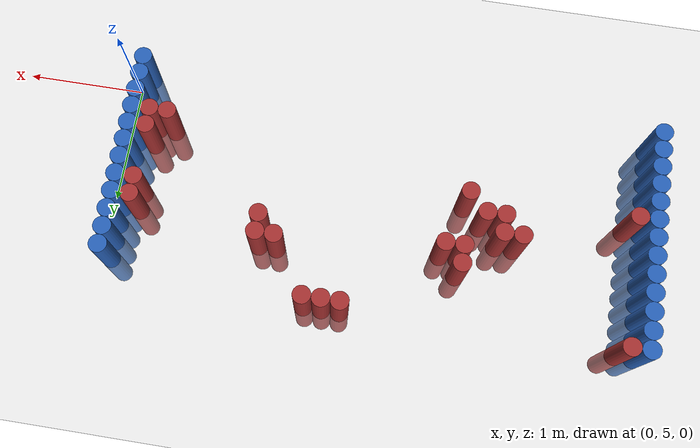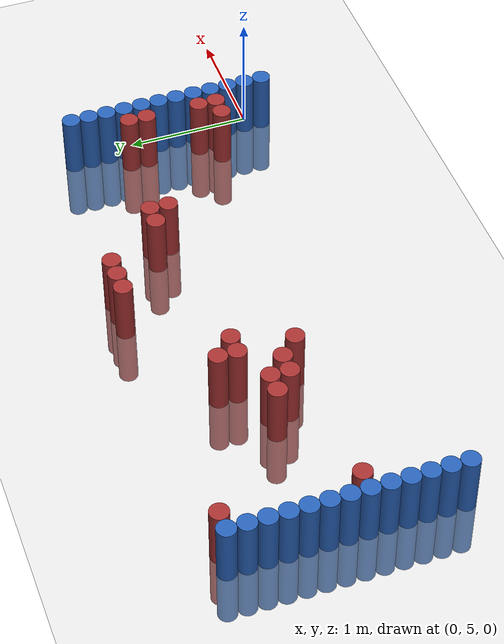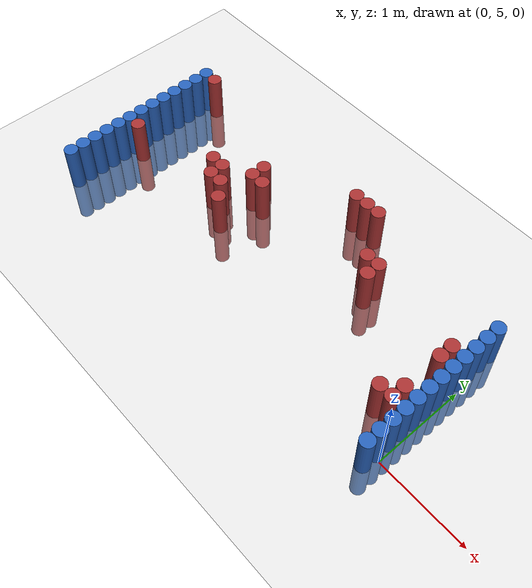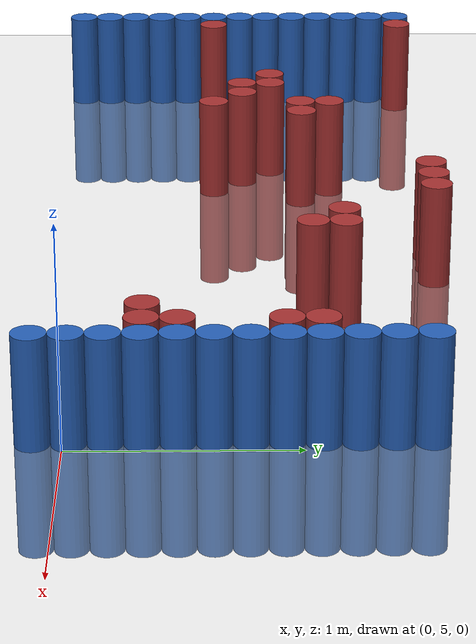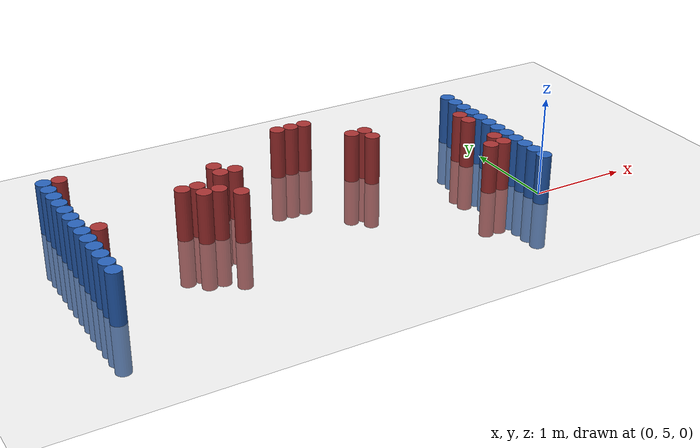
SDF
<sdf version="1.6">
 <world name="default">
  <model name="ground_plane">
   <static>1</static>
   <link name="link">
    <collision name="collision">
     <geometry><plane><normal>0 0 1</normal><size>100 100</size></plane></geometry>
     <surface><friction><ode><mu>100</mu><mu2>50</mu2></ode></friction></surface>
    </collision>
    <visual name="visual">
     <cast_shadows>0</cast_shadows>
     <geometry><plane><normal>0 0 1</normal><size>100 100</size></plane></geometry>
     <material>
      <script><uri>file://media/materials/scripts/gazebo.material</uri><name>Gazebo/Grey</name></script>
     </material>
    </visual>
   </link>
  </model>
  <model name="unit_cylinder_92">
   <static>1</static>
   <pose>-0.075000 4.875000 0.000000 0.000000 0.000000 0.000000</pose>
   <link name="link">
    <inertial>
     <mass>1</mass>
     <inertia><ixx>0.145833</ixx><ixy>0</ixy><ixz>0</ixz><iyy>0.145833</iyy><iyz>0</iyz><izz>0.125</izz></inertia>
    </inertial>
    <collision name="collision">
     <geometry><cylinder><radius>0.075000</radius><length>1</length></cylinder></geometry>
    </collision>
    <visual name="visual">
     <geometry><cylinder><radius>0.075000</radius><length>1</length></cylinder></geometry>
     <material>
      <ambient>0.152000 0.379000 0.720000 1</ambient>
      <diffuse>0.152000 0.379000 0.720000 1</diffuse>
     </material>
     <material>
      <script><name>Gazebo/Grey</name><uri>file://media/materials/scripts/gazebo.material</uri></script>
     </material>
    </visual>
   </link>
  </model>
  <model name="unit_cylinder_93">
   <static>1</static>
   <pose>-4.425000 4.875000 0.000000 0.000000 0.000000 0.000000</pose>
   <link name="link">
    <inertial>
     <mass>1</mass>
     <inertia><ixx>0.145833</ixx><ixy>0</ixy><ixz>0</ixz><iyy>0.145833</iyy><iyz>0</iyz><izz>0.125</izz></inertia>
    </inertial>
    <collision name="collision">
     <geometry><cylinder><radius>0.075000</radius><length>1</length></cylinder></geometry>
    </collision>
    <visual name="visual">
     <geometry><cylinder><radius>0.075000</radius><length>1</length></cylinder></geometry>
     <material>
      <ambient>0.152000 0.379000 0.720000 1</ambient>
      <diffuse>0.152000 0.379000 0.720000 1</diffuse>
     </material>
     <material>
      <script><name>Gazebo/Grey</name><uri>file://media/materials/scripts/gazebo.material</uri></script>
     </material>
    </visual>
   </link>
  </model>
  <model name="unit_cylinder_94">
   <static>1</static>
   <pose>-0.075000 5.025000 0.000000 0.000000 0.000000 0.000000</pose>
   <link name="link">
    <inertial>
     <mass>1</mass>
     <inertia><ixx>0.145833</ixx><ixy>0</ixy><ixz>0</ixz><iyy>0.145833</iyy><iyz>0</iyz><izz>0.125</izz></inertia>
    </inertial>
    <collision name="collision">
     <geometry><cylinder><radius>0.075000</radius><length>1</length></cylinder></geometry>
    </collision>
    <visual name="visual">
     <geometry><cylinder><radius>0.075000</radius><length>1</length></cylinder></geometry>
     <material>
      <ambient>0.152000 0.379000 0.720000 1</ambient>
      <diffuse>0.152000 0.379000 0.720000 1</diffuse>
     </material>
     <material>
      <script><name>Gazebo/Grey</name><uri>file://media/materials/scripts/gazebo.material</uri></script>
     </material>
    </visual>
   </link>
  </model>
  <model name="unit_cylinder_95">
   <static>1</static>
   <pose>-4.425000 5.025000 0.000000 0.000000 0.000000 0.000000</pose>
   <link name="link">
    <inertial>
     <mass>1</mass>
     <inertia><ixx>0.145833</ixx><ixy>0</ixy><ixz>0</ixz><iyy>0.145833</iyy><iyz>0</iyz><izz>0.125</izz></inertia>
    </inertial>
    <collision name="collision">
     <geometry><cylinder><radius>0.075000</radius><length>1</length></cylinder></geometry>
    </collision>
    <visual name="visual">
     <geometry><cylinder><radius>0.075000</radius><length>1</length></cylinder></geometry>
     <material>
      <ambient>0.152000 0.379000 0.720000 1</ambient>
      <diffuse>0.152000 0.379000 0.720000 1</diffuse>
     </material>
     <material>
      <script><name>Gazebo/Grey</name><uri>file://media/materials/scripts/gazebo.material</uri></script>
     </material>
    </visual>
   </link>
  </model>
  <model name="unit_cylinder_96">
   <static>1</static>
   <pose>-4.425000 5.175000 0.000000 0.000000 0.000000 0.000000</pose>
   <link name="link">
    <inertial>
     <mass>1</mass>
     <inertia><ixx>0.145833</ixx><ixy>0</ixy><ixz>0</ixz><iyy>0.145833</iyy><iyz>0</iyz><izz>0.125</izz></inertia>
    </inertial>
    <collision name="collision">
     <geometry><cylinder><radius>0.075000</radius><length>1</length></cylinder></geometry>
    </collision>
    <visual name="visual">
     <geometry><cylinder><radius>0.075000</radius><length>1</length></cylinder></geometry>
     <material>
      <ambient>0.152000 0.379000 0.720000 1</ambient>
      <diffuse>0.152000 0.379000 0.720000 1</diffuse>
     </material>
     <material>
      <script><name>Gazebo/Grey</name><uri>file://media/materials/scripts/gazebo.material</uri></script>
     </material>
    </visual>
   </link>
  </model>
  <model name="unit_cylinder_97">
   <static>1</static>
   <pose>-4.425000 5.325000 0.000000 0.000000 0.000000 0.000000</pose>
   <link name="link">
    <inertial>
     <mass>1</mass>
     <inertia><ixx>0.145833</ixx><ixy>0</ixy><ixz>0</ixz><iyy>0.145833</iyy><iyz>0</iyz><izz>0.125</izz></inertia>
    </inertial>
    <collision name="collision">
     <geometry><cylinder><radius>0.075000</radius><length>1</length></cylinder></geometry>
    </collision>
    <visual name="visual">
     <geometry><cylinder><radius>0.075000</radius><length>1</length></cylinder></geometry>
     <material>
      <ambient>0.152000 0.379000 0.720000 1</ambient>
      <diffuse>0.152000 0.379000 0.720000 1</diffuse>
     </material>
     <material>
      <script><name>Gazebo/Grey</name><uri>file://media/materials/scripts/gazebo.material</uri></script>
     </material>
    </visual>
   </link>
  </model>
  <model name="unit_cylinder_98">
   <static>1</static>
   <pose>-4.425000 5.475000 0.000000 0.000000 0.000000 0.000000</pose>
   <link name="link">
    <inertial>
     <mass>1</mass>
     <inertia><ixx>0.145833</ixx><ixy>0</ixy><ixz>0</ixz><iyy>0.145833</iyy><iyz>0</iyz><izz>0.125</izz></inertia>
    </inertial>
    <collision name="collision">
     <geometry><cylinder><radius>0.075000</radius><length>1</length></cylinder></geometry>
    </collision>
    <visual name="visual">
     <geometry><cylinder><radius>0.075000</radius><length>1</length></cylinder></geometry>
     <material>
      <ambient>0.152000 0.379000 0.720000 1</ambient>
      <diffuse>0.152000 0.379000 0.720000 1</diffuse>
     </material>
     <material>
      <script><name>Gazebo/Grey</name><uri>file://media/materials/scripts/gazebo.material</uri></script>
     </material>
    </visual>
   </link>
  </model>
  <model name="unit_cylinder_99">
   <static>1</static>
   <pose>-4.425000 5.625000 0.000000 0.000000 0.000000 0.000000</pose>
   <link name="link">
    <inertial>
     <mass>1</mass>
     <inertia><ixx>0.145833</ixx><ixy>0</ixy><ixz>0</ixz><iyy>0.145833</iyy><iyz>0</iyz><izz>0.125</izz></inertia>
    </inertial>
    <collision name="collision">
     <geometry><cylinder><radius>0.075000</radius><length>1</length></cylinder></geometry>
    </collision>
    <visual name="visual">
     <geometry><cylinder><radius>0.075000</radius><length>1</length></cylinder></geometry>
     <material>
      <ambient>0.152000 0.379000 0.720000 1</ambient>
      <diffuse>0.152000 0.379000 0.720000 1</diffuse>
     </material>
     <material>
      <script><name>Gazebo/Grey</name><uri>file://media/materials/scripts/gazebo.material</uri></script>
     </material>
    </visual>
   </link>
  </model>
  <model name="unit_cylinder_100">
   <static>1</static>
   <pose>-4.425000 5.775000 0.000000 0.000000 0.000000 0.000000</pose>
   <link name="link">
    <inertial>
     <mass>1</mass>
     <inertia><ixx>0.145833</ixx><ixy>0</ixy><ixz>0</ixz><iyy>0.145833</iyy><iyz>0</iyz><izz>0.125</izz></inertia>
    </inertial>
    <collision name="collision">
     <geometry><cylinder><radius>0.075000</radius><length>1</length></cylinder></geometry>
    </collision>
    <visual name="visual">
     <geometry><cylinder><radius>0.075000</radius><length>1</length></cylinder></geometry>
     <material>
      <ambient>0.152000 0.379000 0.720000 1</ambient>
      <diffuse>0.152000 0.379000 0.720000 1</diffuse>
     </material>
     <material>
      <script><name>Gazebo/Grey</name><uri>file://media/materials/scripts/gazebo.material</uri></script>
     </material>
    </visual>
   </link>
  </model>
  <model name="unit_cylinder_101">
   <static>1</static>
   <pose>-4.425000 5.925000 0.000000 0.000000 0.000000 0.000000</pose>
   <link name="link">
    <inertial>
     <mass>1</mass>
     <inertia><ixx>0.145833</ixx><ixy>0</ixy><ixz>0</ixz><iyy>0.145833</iyy><iyz>0</iyz><izz>0.125</izz></inertia>
    </inertial>
    <collision name="collision">
     <geometry><cylinder><radius>0.075000</radius><length>1</length></cylinder></geometry>
    </collision>
    <visual name="visual">
     <geometry><cylinder><radius>0.075000</radius><length>1</length></cylinder></geometry>
     <material>
      <ambient>0.152000 0.379000 0.720000 1</ambient>
      <diffuse>0.152000 0.379000 0.720000 1</diffuse>
     </material>
     <material>
      <script><name>Gazebo/Grey</name><uri>file://media/materials/scripts/gazebo.material</uri></script>
     </material>
    </visual>
   </link>
  </model>
  <model name="unit_cylinder_102">
   <static>1</static>
   <pose>-4.425000 6.075000 0.000000 0.000000 0.000000 0.000000</pose>
   <link name="link">
    <inertial>
     <mass>1</mass>
     <inertia><ixx>0.145833</ixx><ixy>0</ixy><ixz>0</ixz><iyy>0.145833</iyy><iyz>0</iyz><izz>0.125</izz></inertia>
    </inertial>
    <collision name="collision">
     <geometry><cylinder><radius>0.075000</radius><length>1</length></cylinder></geometry>
    </collision>
    <visual name="visual">
     <geometry><cylinder><radius>0.075000</radius><length>1</length></cylinder></geometry>
     <material>
      <ambient>0.152000 0.379000 0.720000 1</ambient>
      <diffuse>0.152000 0.379000 0.720000 1</diffuse>
     </material>
     <material>
      <script><name>Gazebo/Grey</name><uri>file://media/materials/scripts/gazebo.material</uri></script>
     </material>
    </visual>
   </link>
  </model>
  <model name="unit_cylinder_103">
   <static>1</static>
   <pose>-4.425000 6.225000 0.000000 0.000000 0.000000 0.000000</pose>
   <link name="link">
    <inertial>
     <mass>1</mass>
     <inertia><ixx>0.145833</ixx><ixy>0</ixy><ixz>0</ixz><iyy>0.145833</iyy><iyz>0</iyz><izz>0.125</izz></inertia>
    </inertial>
    <collision name="collision">
     <geometry><cylinder><radius>0.075000</radius><length>1</length></cylinder></geometry>
    </collision>
    <visual name="visual">
     <geometry><cylinder><radius>0.075000</radius><length>1</length></cylinder></geometry>
     <material>
      <ambient>0.152000 0.379000 0.720000 1</ambient>
      <diffuse>0.152000 0.379000 0.720000 1</diffuse>
     </material>
     <material>
      <script><name>Gazebo/Grey</name><uri>file://media/materials/scripts/gazebo.material</uri></script>
     </material>
    </visual>
   </link>
  </model>
  <model name="unit_cylinder_104">
   <static>1</static>
   <pose>-4.425000 6.375000 0.000000 0.000000 0.000000 0.000000</pose>
   <link name="link">
    <inertial>
     <mass>1</mass>
     <inertia><ixx>0.145833</ixx><ixy>0</ixy><ixz>0</ixz><iyy>0.145833</iyy><iyz>0</iyz><izz>0.125</izz></inertia>
    </inertial>
    <collision name="collision">
     <geometry><cylinder><radius>0.075000</radius><length>1</length></cylinder></geometry>
    </collision>
    <visual name="visual">
     <geometry><cylinder><radius>0.075000</radius><length>1</length></cylinder></geometry>
     <material>
      <ambient>0.152000 0.379000 0.720000 1</ambient>
      <diffuse>0.152000 0.379000 0.720000 1</diffuse>
     </material>
     <material>
      <script><name>Gazebo/Grey</name><uri>file://media/materials/scripts/gazebo.material</uri></script>
     </material>
    </visual>
   </link>
  </model>
  <model name="unit_cylinder_105">
   <static>1</static>
   <pose>-4.425000 6.525000 0.000000 0.000000 0.000000 0.000000</pose>
   <link name="link">
    <inertial>
     <mass>1</mass>
     <inertia><ixx>0.145833</ixx><ixy>0</ixy><ixz>0</ixz><iyy>0.145833</iyy><iyz>0</iyz><izz>0.125</izz></inertia>
    </inertial>
    <collision name="collision">
     <geometry><cylinder><radius>0.075000</radius><length>1</length></cylinder></geometry>
    </collision>
    <visual name="visual">
     <geometry><cylinder><radius>0.075000</radius><length>1</length></cylinder></geometry>
     <material>
      <ambient>0.152000 0.379000 0.720000 1</ambient>
      <diffuse>0.152000 0.379000 0.720000 1</diffuse>
     </material>
     <material>
      <script><name>Gazebo/Grey</name><uri>file://media/materials/scripts/gazebo.material</uri></script>
     </material>
    </visual>
   </link>
  </model>
  <model name="unit_cylinder_106">
   <static>1</static>
   <pose>-4.425000 6.675000 0.000000 0.000000 0.000000 0.000000</pose>
   <link name="link">
    <inertial>
     <mass>1</mass>
     <inertia><ixx>0.145833</ixx><ixy>0</ixy><ixz>0</ixz><iyy>0.145833</iyy><iyz>0</iyz><izz>0.125</izz></inertia>
    </inertial>
    <collision name="collision">
     <geometry><cylinder><radius>0.075000</radius><length>1</length></cylinder></geometry>
    </collision>
    <visual name="visual">
     <geometry><cylinder><radius>0.075000</radius><length>1</length></cylinder></geometry>
     <material>
      <ambient>0.152000 0.379000 0.720000 1</ambient>
      <diffuse>0.152000 0.379000 0.720000 1</diffuse>
     </material>
     <material>
      <script><name>Gazebo/Grey</name><uri>file://media/materials/scripts/gazebo.material</uri></script>
     </material>
    </visual>
   </link>
  </model>
  <model name="unit_cylinder_126">
   <static>1</static>
   <pose>-4.275000 5.625000 0.000000 0.000000 0.000000 0.000000</pose>
   <link name="link">
    <inertial>
     <mass>1</mass>
     <inertia><ixx>0.145833</ixx><ixy>0</ixy><ixz>0</ixz><iyy>0.145833</iyy><iyz>0</iyz><izz>0.125</izz></inertia>
    </inertial>
    <collision name="collision">
     <geometry><cylinder><radius>0.075000</radius><length>1</length></cylinder></geometry>
    </collision>
    <visual name="visual">
     <geometry><cylinder><radius>0.075000</radius><length>1</length></cylinder></geometry>
     <material>
      <ambient>0.648000 0.192000 0.192000 1</ambient>
      <diffuse>0.648000 0.192000 0.192000 1</diffuse>
     </material>
     <material>
      <script><name>Gazebo/Grey</name><uri>file://media/materials/scripts/gazebo.material</uri></script>
     </material>
    </visual>
   </link>
  </model>
  <model name="unit_cylinder_127">
   <static>1</static>
   <pose>-4.275000 6.675000 0.000000 0.000000 0.000000 0.000000</pose>
   <link name="link">
    <inertial>
     <mass>1</mass>
     <inertia><ixx>0.145833</ixx><ixy>0</ixy><ixz>0</ixz><iyy>0.145833</iyy><iyz>0</iyz><izz>0.125</izz></inertia>
    </inertial>
    <collision name="collision">
     <geometry><cylinder><radius>0.075000</radius><length>1</length></cylinder></geometry>
    </collision>
    <visual name="visual">
     <geometry><cylinder><radius>0.075000</radius><length>1</length></cylinder></geometry>
     <material>
      <ambient>0.648000 0.192000 0.192000 1</ambient>
      <diffuse>0.648000 0.192000 0.192000 1</diffuse>
     </material>
     <material>
      <script><name>Gazebo/Grey</name><uri>file://media/materials/scripts/gazebo.material</uri></script>
     </material>
    </visual>
   </link>
  </model>
  <model name="unit_cylinder_156">
   <static>1</static>
   <pose>-3.375000 5.925000 0.000000 0.000000 0.000000 0.000000</pose>
   <link name="link">
    <inertial>
     <mass>1</mass>
     <inertia><ixx>0.145833</ixx><ixy>0</ixy><ixz>0</ixz><iyy>0.145833</iyy><iyz>0</iyz><izz>0.125</izz></inertia>
    </inertial>
    <collision name="collision">
     <geometry><cylinder><radius>0.075000</radius><length>1</length></cylinder></geometry>
    </collision>
    <visual name="visual">
     <geometry><cylinder><radius>0.075000</radius><length>1</length></cylinder></geometry>
     <material>
      <ambient>0.648000 0.192000 0.192000 1</ambient>
      <diffuse>0.648000 0.192000 0.192000 1</diffuse>
     </material>
     <material>
      <script><name>Gazebo/Grey</name><uri>file://media/materials/scripts/gazebo.material</uri></script>
     </material>
    </visual>
   </link>
  </model>
  <model name="unit_cylinder_162">
   <static>1</static>
   <pose>-3.225000 5.775000 0.000000 0.000000 0.000000 0.000000</pose>
   <link name="link">
    <inertial>
     <mass>1</mass>
     <inertia><ixx>0.145833</ixx><ixy>0</ixy><ixz>0</ixz><iyy>0.145833</iyy><iyz>0</iyz><izz>0.125</izz></inertia>
    </inertial>
    <collision name="collision">
     <geometry><cylinder><radius>0.075000</radius><length>1</length></cylinder></geometry>
    </collision>
    <visual name="visual">
     <geometry><cylinder><radius>0.075000</radius><length>1</length></cylinder></geometry>
     <material>
      <ambient>0.648000 0.192000 0.192000 1</ambient>
      <diffuse>0.648000 0.192000 0.192000 1</diffuse>
     </material>
     <material>
      <script><name>Gazebo/Grey</name><uri>file://media/materials/scripts/gazebo.material</uri></script>
     </material>
    </visual>
   </link>
  </model>
  <model name="unit_cylinder_163">
   <static>1</static>
   <pose>-3.225000 5.925000 0.000000 0.000000 0.000000 0.000000</pose>
   <link name="link">
    <inertial>
     <mass>1</mass>
     <inertia><ixx>0.145833</ixx><ixy>0</ixy><ixz>0</ixz><iyy>0.145833</iyy><iyz>0</iyz><izz>0.125</izz></inertia>
    </inertial>
    <collision name="collision">
     <geometry><cylinder><radius>0.075000</radius><length>1</length></cylinder></geometry>
    </collision>
    <visual name="visual">
     <geometry><cylinder><radius>0.075000</radius><length>1</length></cylinder></geometry>
     <material>
      <ambient>0.648000 0.192000 0.192000 1</ambient>
      <diffuse>0.648000 0.192000 0.192000 1</diffuse>
     </material>
     <material>
      <script><name>Gazebo/Grey</name><uri>file://media/materials/scripts/gazebo.material</uri></script>
     </material>
    </visual>
   </link>
  </model>
  <model name="unit_cylinder_167">
   <static>1</static>
   <pose>-3.075000 5.775000 0.000000 0.000000 0.000000 0.000000</pose>
   <link name="link">
    <inertial>
     <mass>1</mass>
     <inertia><ixx>0.145833</ixx><ixy>0</ixy><ixz>0</ixz><iyy>0.145833</iyy><iyz>0</iyz><izz>0.125</izz></inertia>
    </inertial>
    <collision name="collision">
     <geometry><cylinder><radius>0.075000</radius><length>1</length></cylinder></geometry>
    </collision>
    <visual name="visual">
     <geometry><cylinder><radius>0.075000</radius><length>1</length></cylinder></geometry>
     <material>
      <ambient>0.648000 0.192000 0.192000 1</ambient>
      <diffuse>0.648000 0.192000 0.192000 1</diffuse>
     </material>
     <material>
      <script><name>Gazebo/Grey</name><uri>file://media/materials/scripts/gazebo.material</uri></script>
     </material>
    </visual>
   </link>
  </model>
  <model name="unit_cylinder_172">
   <static>1</static>
   <pose>-2.925000 5.625000 0.000000 0.000000 0.000000 0.000000</pose>
   <link name="link">
    <inertial>
     <mass>1</mass>
     <inertia><ixx>0.145833</ixx><ixy>0</ixy><ixz>0</ixz><iyy>0.145833</iyy><iyz>0</iyz><izz>0.125</izz></inertia>
    </inertial>
    <collision name="collision">
     <geometry><cylinder><radius>0.075000</radius><length>1</length></cylinder></geometry>
    </collision>
    <visual name="visual">
     <geometry><cylinder><radius>0.075000</radius><length>1</length></cylinder></geometry>
     <material>
      <ambient>0.648000 0.192000 0.192000 1</ambient>
      <diffuse>0.648000 0.192000 0.192000 1</diffuse>
     </material>
     <material>
      <script><name>Gazebo/Grey</name><uri>file://media/materials/scripts/gazebo.material</uri></script>
     </material>
    </visual>
   </link>
  </model>
  <model name="unit_cylinder_173">
   <static>1</static>
   <pose>-2.925000 6.075000 0.000000 0.000000 0.000000 0.000000</pose>
   <link name="link">
    <inertial>
     <mass>1</mass>
     <inertia><ixx>0.145833</ixx><ixy>0</ixy><ixz>0</ixz><iyy>0.145833</iyy><iyz>0</iyz><izz>0.125</izz></inertia>
    </inertial>
    <collision name="collision">
     <geometry><cylinder><radius>0.075000</radius><length>1</length></cylinder></geometry>
    </collision>
    <visual name="visual">
     <geometry><cylinder><radius>0.075000</radius><length>1</length></cylinder></geometry>
     <material>
      <ambient>0.648000 0.192000 0.192000 1</ambient>
      <diffuse>0.648000 0.192000 0.192000 1</diffuse>
     </material>
     <material>
      <script><name>Gazebo/Grey</name><uri>file://media/materials/scripts/gazebo.material</uri></script>
     </material>
    </visual>
   </link>
  </model>
  <model name="unit_cylinder_174">
   <static>1</static>
   <pose>-2.925000 6.225000 0.000000 0.000000 0.000000 0.000000</pose>
   <link name="link">
    <inertial>
     <mass>1</mass>
     <inertia><ixx>0.145833</ixx><ixy>0</ixy><ixz>0</ixz><iyy>0.145833</iyy><iyz>0</iyz><izz>0.125</izz></inertia>
    </inertial>
    <collision name="collision">
     <geometry><cylinder><radius>0.075000</radius><length>1</length></cylinder></geometry>
    </collision>
    <visual name="visual">
     <geometry><cylinder><radius>0.075000</radius><length>1</length></cylinder></geometry>
     <material>
      <ambient>0.648000 0.192000 0.192000 1</ambient>
      <diffuse>0.648000 0.192000 0.192000 1</diffuse>
     </material>
     <material>
      <script><name>Gazebo/Grey</name><uri>file://media/materials/scripts/gazebo.material</uri></script>
     </material>
    </visual>
   </link>
  </model>
  <model name="unit_cylinder_176">
   <static>1</static>
   <pose>-2.775000 6.075000 0.000000 0.000000 0.000000 0.000000</pose>
   <link name="link">
    <inertial>
     <mass>1</mass>
     <inertia><ixx>0.145833</ixx><ixy>0</ixy><ixz>0</ixz><iyy>0.145833</iyy><iyz>0</iyz><izz>0.125</izz></inertia>
    </inertial>
    <collision name="collision">
     <geometry><cylinder><radius>0.075000</radius><length>1</length></cylinder></geometry>
    </collision>
    <visual name="visual">
     <geometry><cylinder><radius>0.075000</radius><length>1</length></cylinder></geometry>
     <material>
      <ambient>0.648000 0.192000 0.192000 1</ambient>
      <diffuse>0.648000 0.192000 0.192000 1</diffuse>
     </material>
     <material>
      <script><name>Gazebo/Grey</name><uri>file://media/materials/scripts/gazebo.material</uri></script>
     </material>
    </visual>
   </link>
  </model>
  <model name="unit_cylinder_178">
   <static>1</static>
   <pose>-2.025000 6.675000 0.000000 0.000000 0.000000 0.000000</pose>
   <link name="link">
    <inertial>
     <mass>1</mass>
     <inertia><ixx>0.145833</ixx><ixy>0</ixy><ixz>0</ixz><iyy>0.145833</iyy><iyz>0</iyz><izz>0.125</izz></inertia>
    </inertial>
    <collision name="collision">
     <geometry><cylinder><radius>0.075000</radius><length>1</length></cylinder></geometry>
    </collision>
    <visual name="visual">
     <geometry><cylinder><radius>0.075000</radius><length>1</length></cylinder></geometry>
     <material>
      <ambient>0.648000 0.192000 0.192000 1</ambient>
      <diffuse>0.648000 0.192000 0.192000 1</diffuse>
     </material>
     <material>
      <script><name>Gazebo/Grey</name><uri>file://media/materials/scripts/gazebo.material</uri></script>
     </material>
    </visual>
   </link>
  </model>
  <model name="unit_cylinder_179">
   <static>1</static>
   <pose>-1.875000 6.675000 0.000000 0.000000 0.000000 0.000000</pose>
   <link name="link">
    <inertial>
     <mass>1</mass>
     <inertia><ixx>0.145833</ixx><ixy>0</ixy><ixz>0</ixz><iyy>0.145833</iyy><iyz>0</iyz><izz>0.125</izz></inertia>
    </inertial>
    <collision name="collision">
     <geometry><cylinder><radius>0.075000</radius><length>1</length></cylinder></geometry>
    </collision>
    <visual name="visual">
     <geometry><cylinder><radius>0.075000</radius><length>1</length></cylinder></geometry>
     <material>
      <ambient>0.648000 0.192000 0.192000 1</ambient>
      <diffuse>0.648000 0.192000 0.192000 1</diffuse>
     </material>
     <material>
      <script><name>Gazebo/Grey</name><uri>file://media/materials/scripts/gazebo.material</uri></script>
     </material>
    </visual>
   </link>
  </model>
  <model name="unit_cylinder_181">
   <static>1</static>
   <pose>-1.725000 6.675000 0.000000 0.000000 0.000000 0.000000</pose>
   <link name="link">
    <inertial>
     <mass>1</mass>
     <inertia><ixx>0.145833</ixx><ixy>0</ixy><ixz>0</ixz><iyy>0.145833</iyy><iyz>0</iyz><izz>0.125</izz></inertia>
    </inertial>
    <collision name="collision">
     <geometry><cylinder><radius>0.075000</radius><length>1</length></cylinder></geometry>
    </collision>
    <visual name="visual">
     <geometry><cylinder><radius>0.075000</radius><length>1</length></cylinder></geometry>
     <material>
      <ambient>0.648000 0.192000 0.192000 1</ambient>
      <diffuse>0.648000 0.192000 0.192000 1</diffuse>
     </material>
     <material>
      <script><name>Gazebo/Grey</name><uri>file://media/materials/scripts/gazebo.material</uri></script>
     </material>
    </visual>
   </link>
  </model>
  <model name="unit_cylinder_183">
   <static>1</static>
   <pose>-1.425000 6.225000 0.000000 0.000000 0.000000 0.000000</pose>
   <link name="link">
    <inertial>
     <mass>1</mass>
     <inertia><ixx>0.145833</ixx><ixy>0</ixy><ixz>0</ixz><iyy>0.145833</iyy><iyz>0</iyz><izz>0.125</izz></inertia>
    </inertial>
    <collision name="collision">
     <geometry><cylinder><radius>0.075000</radius><length>1</length></cylinder></geometry>
    </collision>
    <visual name="visual">
     <geometry><cylinder><radius>0.075000</radius><length>1</length></cylinder></geometry>
     <material>
      <ambient>0.648000 0.192000 0.192000 1</ambient>
      <diffuse>0.648000 0.192000 0.192000 1</diffuse>
     </material>
     <material>
      <script><name>Gazebo/Grey</name><uri>file://media/materials/scripts/gazebo.material</uri></script>
     </material>
    </visual>
   </link>
  </model>
  <model name="unit_cylinder_184">
   <static>1</static>
   <pose>-1.275000 6.075000 0.000000 0.000000 0.000000 0.000000</pose>
   <link name="link">
    <inertial>
     <mass>1</mass>
     <inertia><ixx>0.145833</ixx><ixy>0</ixy><ixz>0</ixz><iyy>0.145833</iyy><iyz>0</iyz><izz>0.125</izz></inertia>
    </inertial>
    <collision name="collision">
     <geometry><cylinder><radius>0.075000</radius><length>1</length></cylinder></geometry>
    </collision>
    <visual name="visual">
     <geometry><cylinder><radius>0.075000</radius><length>1</length></cylinder></geometry>
     <material>
      <ambient>0.648000 0.192000 0.192000 1</ambient>
      <diffuse>0.648000 0.192000 0.192000 1</diffuse>
     </material>
     <material>
      <script><name>Gazebo/Grey</name><uri>file://media/materials/scripts/gazebo.material</uri></script>
     </material>
    </visual>
   </link>
  </model>
  <model name="unit_cylinder_185">
   <static>1</static>
   <pose>-1.275000 6.225000 0.000000 0.000000 0.000000 0.000000</pose>
   <link name="link">
    <inertial>
     <mass>1</mass>
     <inertia><ixx>0.145833</ixx><ixy>0</ixy><ixz>0</ixz><iyy>0.145833</iyy><iyz>0</iyz><izz>0.125</izz></inertia>
    </inertial>
    <collision name="collision">
     <geometry><cylinder><radius>0.075000</radius><length>1</length></cylinder></geometry>
    </collision>
    <visual name="visual">
     <geometry><cylinder><radius>0.075000</radius><length>1</length></cylinder></geometry>
     <material>
      <ambient>0.648000 0.192000 0.192000 1</ambient>
      <diffuse>0.648000 0.192000 0.192000 1</diffuse>
     </material>
     <material>
      <script><name>Gazebo/Grey</name><uri>file://media/materials/scripts/gazebo.material</uri></script>
     </material>
    </visual>
   </link>
  </model>
  <model name="unit_cylinder_189">
   <static>1</static>
   <pose>-0.375000 5.325000 0.000000 0.000000 0.000000 0.000000</pose>
   <link name="link">
    <inertial>
     <mass>1</mass>
     <inertia><ixx>0.145833</ixx><ixy>0</ixy><ixz>0</ixz><iyy>0.145833</iyy><iyz>0</iyz><izz>0.125</izz></inertia>
    </inertial>
    <collision name="collision">
     <geometry><cylinder><radius>0.075000</radius><length>1</length></cylinder></geometry>
    </collision>
    <visual name="visual">
     <geometry><cylinder><radius>0.075000</radius><length>1</length></cylinder></geometry>
     <material>
      <ambient>0.648000 0.192000 0.192000 1</ambient>
      <diffuse>0.648000 0.192000 0.192000 1</diffuse>
     </material>
     <material>
      <script><name>Gazebo/Grey</name><uri>file://media/materials/scripts/gazebo.material</uri></script>
     </material>
    </visual>
   </link>
  </model>
  <model name="unit_cylinder_191">
   <static>1</static>
   <pose>-0.225000 5.325000 0.000000 0.000000 0.000000 0.000000</pose>
   <link name="link">
    <inertial>
     <mass>1</mass>
     <inertia><ixx>0.145833</ixx><ixy>0</ixy><ixz>0</ixz><iyy>0.145833</iyy><iyz>0</iyz><izz>0.125</izz></inertia>
    </inertial>
    <collision name="collision">
     <geometry><cylinder><radius>0.075000</radius><length>1</length></cylinder></geometry>
    </collision>
    <visual name="visual">
     <geometry><cylinder><radius>0.075000</radius><length>1</length></cylinder></geometry>
     <material>
      <ambient>0.648000 0.192000 0.192000 1</ambient>
      <diffuse>0.648000 0.192000 0.192000 1</diffuse>
     </material>
     <material>
      <script><name>Gazebo/Grey</name><uri>file://media/materials/scripts/gazebo.material</uri></script>
     </material>
    </visual>
   </link>
  </model>
  <model name="unit_cylinder_192">
   <static>1</static>
   <pose>-0.225000 5.475000 0.000000 0.000000 0.000000 0.000000</pose>
   <link name="link">
    <inertial>
     <mass>1</mass>
     <inertia><ixx>0.145833</ixx><ixy>0</ixy><ixz>0</ixz><iyy>0.145833</iyy><iyz>0</iyz><izz>0.125</izz></inertia>
    </inertial>
    <collision name="collision">
     <geometry><cylinder><radius>0.075000</radius><length>1</length></cylinder></geometry>
    </collision>
    <visual name="visual">
     <geometry><cylinder><radius>0.075000</radius><length>1</length></cylinder></geometry>
     <material>
      <ambient>0.648000 0.192000 0.192000 1</ambient>
      <diffuse>0.648000 0.192000 0.192000 1</diffuse>
     </material>
     <material>
      <script><name>Gazebo/Grey</name><uri>file://media/materials/scripts/gazebo.material</uri></script>
     </material>
    </visual>
   </link>
  </model>
  <model name="unit_cylinder_193">
   <static>1</static>
   <pose>-0.225000 5.925000 0.000000 0.000000 0.000000 0.000000</pose>
   <link name="link">
    <inertial>
     <mass>1</mass>
     <inertia><ixx>0.145833</ixx><ixy>0</ixy><ixz>0</ixz><iyy>0.145833</iyy><iyz>0</iyz><izz>0.125</izz></inertia>
    </inertial>
    <collision name="collision">
     <geometry><cylinder><radius>0.075000</radius><length>1</length></cylinder></geometry>
    </collision>
    <visual name="visual">
     <geometry><cylinder><radius>0.075000</radius><length>1</length></cylinder></geometry>
     <material>
      <ambient>0.648000 0.192000 0.192000 1</ambient>
      <diffuse>0.648000 0.192000 0.192000 1</diffuse>
     </material>
     <material>
      <script><name>Gazebo/Grey</name><uri>file://media/materials/scripts/gazebo.material</uri></script>
     </material>
    </visual>
   </link>
  </model>
  <model name="unit_cylinder_194">
   <static>1</static>
   <pose>-0.225000 6.075000 0.000000 0.000000 0.000000 0.000000</pose>
   <link name="link">
    <inertial>
     <mass>1</mass>
     <inertia><ixx>0.145833</ixx><ixy>0</ixy><ixz>0</ixz><iyy>0.145833</iyy><iyz>0</iyz><izz>0.125</izz></inertia>
    </inertial>
    <collision name="collision">
     <geometry><cylinder><radius>0.075000</radius><length>1</length></cylinder></geometry>
    </collision>
    <visual name="visual">
     <geometry><cylinder><radius>0.075000</radius><length>1</length></cylinder></geometry>
     <material>
      <ambient>0.648000 0.192000 0.192000 1</ambient>
      <diffuse>0.648000 0.192000 0.192000 1</diffuse>
     </material>
     <material>
      <script><name>Gazebo/Grey</name><uri>file://media/materials/scripts/gazebo.material</uri></script>
     </material>
    </visual>
   </link>
  </model>
  <model name="unit_cylinder_201">
   <static>1</static>
   <pose>-0.075000 5.175000 0.000000 0.000000 0.000000 0.000000</pose>
   <link name="link">
    <inertial>
     <mass>1</mass>
     <inertia><ixx>0.145833</ixx><ixy>0</ixy><ixz>0</ixz><iyy>0.145833</iyy><iyz>0</iyz><izz>0.125</izz></inertia>
    </inertial>
    <collision name="collision">
     <geometry><cylinder><radius>0.075000</radius><length>1</length></cylinder></geometry>
    </collision>
    <visual name="visual">
     <geometry><cylinder><radius>0.075000</radius><length>1</length></cylinder></geometry>
     <material>
      <ambient>0.152000 0.379000 0.720000 1</ambient>
      <diffuse>0.152000 0.379000 0.720000 1</diffuse>
     </material>
     <material>
      <script><name>Gazebo/Grey</name><uri>file://media/materials/scripts/gazebo.material</uri></script>
     </material>
    </visual>
   </link>
  </model>
  <model name="unit_cylinder_202">
   <static>1</static>
   <pose>-0.075000 5.325000 0.000000 0.000000 0.000000 0.000000</pose>
   <link name="link">
    <inertial>
     <mass>1</mass>
     <inertia><ixx>0.145833</ixx><ixy>0</ixy><ixz>0</ixz><iyy>0.145833</iyy><iyz>0</iyz><izz>0.125</izz></inertia>
    </inertial>
    <collision name="collision">
     <geometry><cylinder><radius>0.075000</radius><length>1</length></cylinder></geometry>
    </collision>
    <visual name="visual">
     <geometry><cylinder><radius>0.075000</radius><length>1</length></cylinder></geometry>
     <material>
      <ambient>0.152000 0.379000 0.720000 1</ambient>
      <diffuse>0.152000 0.379000 0.720000 1</diffuse>
     </material>
     <material>
      <script><name>Gazebo/Grey</name><uri>file://media/materials/scripts/gazebo.material</uri></script>
     </material>
    </visual>
   </link>
  </model>
  <model name="unit_cylinder_203">
   <static>1</static>
   <pose>-0.075000 5.475000 0.000000 0.000000 0.000000 0.000000</pose>
   <link name="link">
    <inertial>
     <mass>1</mass>
     <inertia><ixx>0.145833</ixx><ixy>0</ixy><ixz>0</ixz><iyy>0.145833</iyy><iyz>0</iyz><izz>0.125</izz></inertia>
    </inertial>
    <collision name="collision">
     <geometry><cylinder><radius>0.075000</radius><length>1</length></cylinder></geometry>
    </collision>
    <visual name="visual">
     <geometry><cylinder><radius>0.075000</radius><length>1</length></cylinder></geometry>
     <material>
      <ambient>0.152000 0.379000 0.720000 1</ambient>
      <diffuse>0.152000 0.379000 0.720000 1</diffuse>
     </material>
     <material>
      <script><name>Gazebo/Grey</name><uri>file://media/materials/scripts/gazebo.material</uri></script>
     </material>
    </visual>
   </link>
  </model>
  <model name="unit_cylinder_204">
   <static>1</static>
   <pose>-0.075000 5.625000 0.000000 0.000000 0.000000 0.000000</pose>
   <link name="link">
    <inertial>
     <mass>1</mass>
     <inertia><ixx>0.145833</ixx><ixy>0</ixy><ixz>0</ixz><iyy>0.145833</iyy><iyz>0</iyz><izz>0.125</izz></inertia>
    </inertial>
    <collision name="collision">
     <geometry><cylinder><radius>0.075000</radius><length>1</length></cylinder></geometry>
    </collision>
    <visual name="visual">
     <geometry><cylinder><radius>0.075000</radius><length>1</length></cylinder></geometry>
     <material>
      <ambient>0.152000 0.379000 0.720000 1</ambient>
      <diffuse>0.152000 0.379000 0.720000 1</diffuse>
     </material>
     <material>
      <script><name>Gazebo/Grey</name><uri>file://media/materials/scripts/gazebo.material</uri></script>
     </material>
    </visual>
   </link>
  </model>
  <model name="unit_cylinder_205">
   <static>1</static>
   <pose>-0.075000 5.775000 0.000000 0.000000 0.000000 0.000000</pose>
   <link name="link">
    <inertial>
     <mass>1</mass>
     <inertia><ixx>0.145833</ixx><ixy>0</ixy><ixz>0</ixz><iyy>0.145833</iyy><iyz>0</iyz><izz>0.125</izz></inertia>
    </inertial>
    <collision name="collision">
     <geometry><cylinder><radius>0.075000</radius><length>1</length></cylinder></geometry>
    </collision>
    <visual name="visual">
     <geometry><cylinder><radius>0.075000</radius><length>1</length></cylinder></geometry>
     <material>
      <ambient>0.152000 0.379000 0.720000 1</ambient>
      <diffuse>0.152000 0.379000 0.720000 1</diffuse>
     </material>
     <material>
      <script><name>Gazebo/Grey</name><uri>file://media/materials/scripts/gazebo.material</uri></script>
     </material>
    </visual>
   </link>
  </model>
  <model name="unit_cylinder_206">
   <static>1</static>
   <pose>-0.075000 5.925000 0.000000 0.000000 0.000000 0.000000</pose>
   <link name="link">
    <inertial>
     <mass>1</mass>
     <inertia><ixx>0.145833</ixx><ixy>0</ixy><ixz>0</ixz><iyy>0.145833</iyy><iyz>0</iyz><izz>0.125</izz></inertia>
    </inertial>
    <collision name="collision">
     <geometry><cylinder><radius>0.075000</radius><length>1</length></cylinder></geometry>
    </collision>
    <visual name="visual">
     <geometry><cylinder><radius>0.075000</radius><length>1</length></cylinder></geometry>
     <material>
      <ambient>0.152000 0.379000 0.720000 1</ambient>
      <diffuse>0.152000 0.379000 0.720000 1</diffuse>
     </material>
     <material>
      <script><name>Gazebo/Grey</name><uri>file://media/materials/scripts/gazebo.material</uri></script>
     </material>
    </visual>
   </link>
  </model>
  <model name="unit_cylinder_207">
   <static>1</static>
   <pose>-0.075000 6.075000 0.000000 0.000000 0.000000 0.000000</pose>
   <link name="link">
    <inertial>
     <mass>1</mass>
     <inertia><ixx>0.145833</ixx><ixy>0</ixy><ixz>0</ixz><iyy>0.145833</iyy><iyz>0</iyz><izz>0.125</izz></inertia>
    </inertial>
    <collision name="collision">
     <geometry><cylinder><radius>0.075000</radius><length>1</length></cylinder></geometry>
    </collision>
    <visual name="visual">
     <geometry><cylinder><radius>0.075000</radius><length>1</length></cylinder></geometry>
     <material>
      <ambient>0.152000 0.379000 0.720000 1</ambient>
      <diffuse>0.152000 0.379000 0.720000 1</diffuse>
     </material>
     <material>
      <script><name>Gazebo/Grey</name><uri>file://media/materials/scripts/gazebo.material</uri></script>
     </material>
    </visual>
   </link>
  </model>
  <model name="unit_cylinder_208">
   <static>1</static>
   <pose>-0.075000 6.225000 0.000000 0.000000 0.000000 0.000000</pose>
   <link name="link">
    <inertial>
     <mass>1</mass>
     <inertia><ixx>0.145833</ixx><ixy>0</ixy><ixz>0</ixz><iyy>0.145833</iyy><iyz>0</iyz><izz>0.125</izz></inertia>
    </inertial>
    <collision name="collision">
     <geometry><cylinder><radius>0.075000</radius><length>1</length></cylinder></geometry>
    </collision>
    <visual name="visual">
     <geometry><cylinder><radius>0.075000</radius><length>1</length></cylinder></geometry>
     <material>
      <ambient>0.152000 0.379000 0.720000 1</ambient>
      <diffuse>0.152000 0.379000 0.720000 1</diffuse>
     </material>
     <material>
      <script><name>Gazebo/Grey</name><uri>file://media/materials/scripts/gazebo.material</uri></script>
     </material>
    </visual>
   </link>
  </model>
  <model name="unit_cylinder_209">
   <static>1</static>
   <pose>-0.075000 6.375000 0.000000 0.000000 0.000000 0.000000</pose>
   <link name="link">
    <inertial>
     <mass>1</mass>
     <inertia><ixx>0.145833</ixx><ixy>0</ixy><ixz>0</ixz><iyy>0.145833</iyy><iyz>0</iyz><izz>0.125</izz></inertia>
    </inertial>
    <collision name="collision">
     <geometry><cylinder><radius>0.075000</radius><length>1</length></cylinder></geometry>
    </collision>
    <visual name="visual">
     <geometry><cylinder><radius>0.075000</radius><length>1</length></cylinder></geometry>
     <material>
      <ambient>0.152000 0.379000 0.720000 1</ambient>
      <diffuse>0.152000 0.379000 0.720000 1</diffuse>
     </material>
     <material>
      <script><name>Gazebo/Grey</name><uri>file://media/materials/scripts/gazebo.material</uri></script>
     </material>
    </visual>
   </link>
  </model>
  <model name="unit_cylinder_210">
   <static>1</static>
   <pose>-0.075000 6.525000 0.000000 0.000000 0.000000 0.000000</pose>
   <link name="link">
    <inertial>
     <mass>1</mass>
     <inertia><ixx>0.145833</ixx><ixy>0</ixy><ixz>0</ixz><iyy>0.145833</iyy><iyz>0</iyz><izz>0.125</izz></inertia>
    </inertial>
    <collision name="collision">
     <geometry><cylinder><radius>0.075000</radius><length>1</length></cylinder></geometry>
    </collision>
    <visual name="visual">
     <geometry><cylinder><radius>0.075000</radius><length>1</length></cylinder></geometry>
     <material>
      <ambient>0.152000 0.379000 0.720000 1</ambient>
      <diffuse>0.152000 0.379000 0.720000 1</diffuse>
     </material>
     <material>
      <script><name>Gazebo/Grey</name><uri>file://media/materials/scripts/gazebo.material</uri></script>
     </material>
    </visual>
   </link>
  </model>
 </world>
</sdf>
